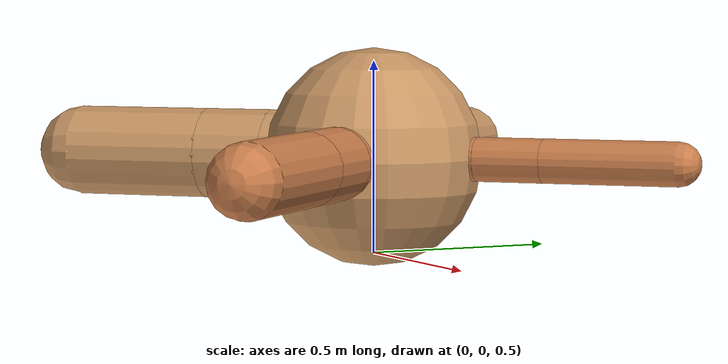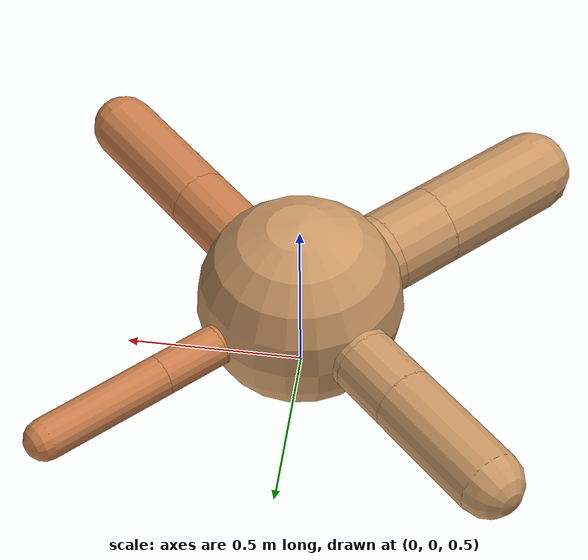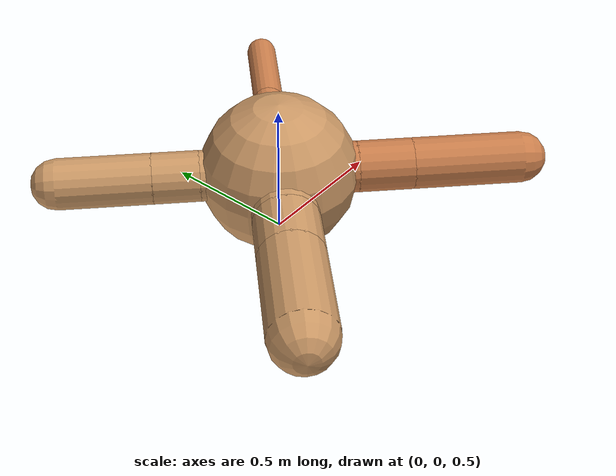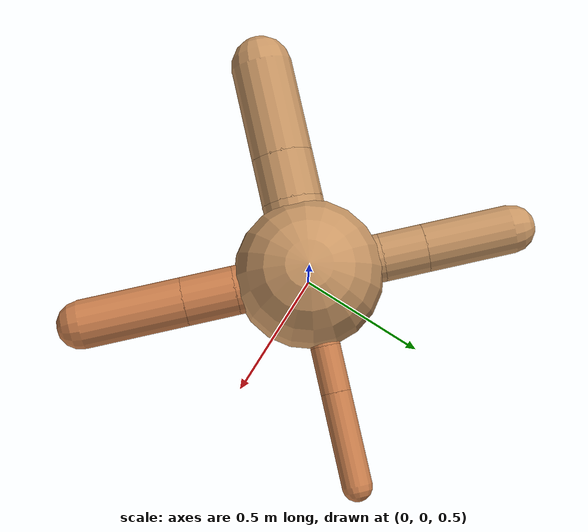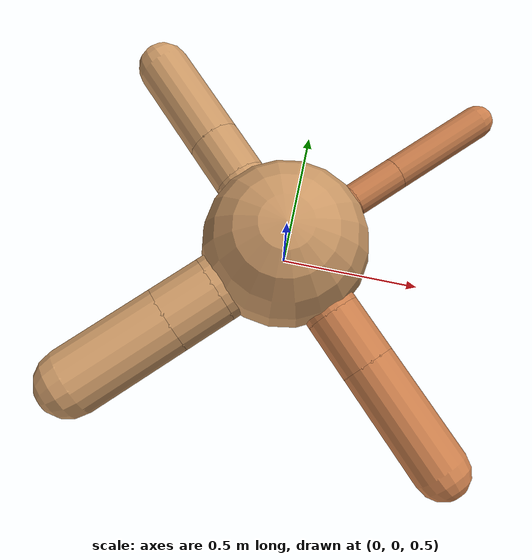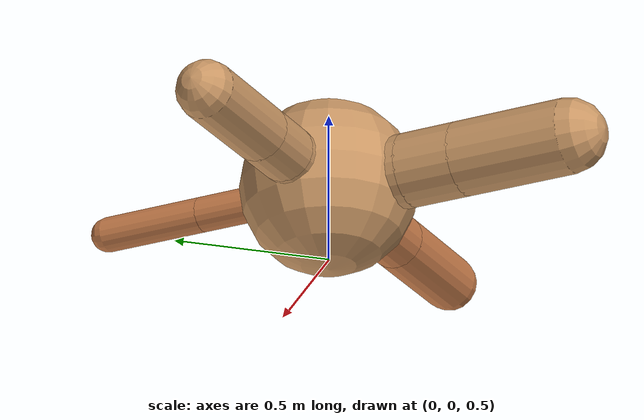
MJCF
<?xml version="1.0" ?>
<mujoco model="ant">

	<compiler angle="degree" coordinate="local" inertiafromgeom="true"/>

	<option integrator="RK4" timestep="0.01"/>

	<custom>

		<numeric data="0.0 0.0 0.55 1.0 0.0 0.0 0.0 0.0 1.0 0.0 -1.0 0.0 -1.0 0.0 1.0" name="init_qpos"/>

	</custom>

	<default>

		<joint armature="1" damping="1" limited="true"/>

		<geom conaffinity="0" condim="3" density="5.0" friction="1.5 0.1 0.1" margin="0.01" rgba="0.8 0.6 0.4 1"/>

	</default>

	<worldbody>

		<body name="torso" pos="0 0 0.75">

			<geom name="torso_geom" pos="0 0 0" size="0.2853191743014384" type="sphere"/>

			<!--joint armature="0" damping="0" limited="false" margin="0.01" name="root" pos="0 0 0" type="free"/-->

			<body name="front_left_leg" pos="0 0 0">

				<geom fromto="0 0 0 0.2 0.2 0" name="aux_1_geom" size="0.05756784787790673" type="capsule" rgba=".8 .5 .3 1"/>

				<body name="aux_1" pos="0.2 0.2 0">

					<joint axis="0 0 1" name="hip_1" pos="0.0 0.0 0.0" range="-40 40" type="hinge"/>

					<geom fromto="0 0 0 0.1250012951910701 0.1250012951910701 0" name="left_leg_geom" size="0.05756784787790673" type="capsule" rgba=".8 .5 .3 1"/>

					<body pos="0.1250012951910701 0.1250012951910701 0" name="front_left_foot">

						<joint axis="-1 1 0" name="ankle_1" pos="0.0 0.0 0.0" range="30 100" type="hinge"/>

						<geom fromto="0 0 0 0.2500025903821402 0.2500025903821402 0" name="left_ankle_geom" size="0.05756784787790673" type="capsule" rgba=".8 .5 .3 1"/>

					</body>

				</body>

			</body>

			<body name="front_right_leg" pos="0 0 0">

				<geom fromto="0 0 0 -0.2 0.2 0" name="aux_2_geom" size="0.09279894863748148" type="capsule"/>

				<body name="aux_2" pos="-0.2 0.2 0">

					<joint axis="0 0 1" name="hip_2" pos="0.0 0.0 0.0" range="-40 40" type="hinge"/>

					<geom fromto="0 0 0 -0.11908166539469428 0.11908166539469428 0" name="right_leg_geom" size="0.09279894863748148" type="capsule"/>

					<body pos="-0.11908166539469428 0.11908166539469428 0" name="front_right_foot">

						<joint axis="1 1 0" name="ankle_2" pos="0.0 0.0 0.0" range="-100 -30" type="hinge"/>

						<geom fromto="0 0 0 -0.23816333078938856 0.23816333078938856 0" name="right_ankle_geom" size="0.09279894863748148" type="capsule"/>

					</body>

				</body>

			</body>

			<body name="left_back_leg" pos="0 0 0">

				<geom fromto="0 0 0 -0.2 -0.2 0" name="aux_3_geom" size="0.1188297916977645" type="capsule"/>

				<body name="aux_3" pos="-0.2 -0.2 0">

					<joint axis="0 0 1" name="hip_3" pos="0.0 0.0 0.0" range="-40 40" type="hinge"/>

					<geom fromto="0 0 0 -0.12956888614892442 -0.12956888614892442 0" name="back_leg_geom" size="0.1188297916977645" type="capsule"/>

					<body pos="-0.12956888614892442 -0.12956888614892442 0" name="left_back_foot">

						<joint axis="-1 1 0" name="ankle_3" pos="0.0 0.0 0.0" range="-100 -30" type="hinge"/>

						<geom fromto="0 0 0 -0.25913777229784885 -0.25913777229784885 0" name="third_ankle_geom" size="0.1188297916977645" type="capsule"/>

					</body>

				</body>

			</body>

			<body name="right_back_leg" pos="0 0 0">

				<geom fromto="0 0 0 0.2 -0.2 0" name="aux_4_geom" size="0.09386823231849428" type="capsule" rgba=".8 .5 .3 1"/>

				<body name="aux_4" pos="0.2 -0.2 0">

					<joint axis="0 0 1" name="hip_4" pos="0.0 0.0 0.0" range="-40 40" type="hinge"/>

					<geom fromto="0 0 0 0.14055670391041608 -0.14055670391041608 0" name="rightback_leg_geom" size="0.09386823231849428" type="capsule" rgba=".8 .5 .3 1"/>

					<body pos="0.14055670391041608 -0.14055670391041608 0" name="right_back_foot">

						<joint axis="1 1 0" name="ankle_4" pos="0.0 0.0 0.0" range="30 100" type="hinge"/>

						<geom fromto="0 0 0 0.28111340782083216 -0.28111340782083216 0" name="fourth_ankle_geom" size="0.09386823231849428" type="capsule" rgba=".8 .5 .3 1"/>

					</body>

				</body>

			</body>

		</body>

	</worldbody>

	<actuator>

		<motor ctrllimited="true" ctrlrange="-1.0 1.0" joint="hip_4" gear="150"/>

		<motor ctrllimited="true" ctrlrange="-1.0 1.0" joint="ankle_4" gear="150"/>

		<motor ctrllimited="true" ctrlrange="-1.0 1.0" joint="hip_1" gear="150"/>

		<motor ctrllimited="true" ctrlrange="-1.0 1.0" joint="ankle_1" gear="150"/>

		<motor ctrllimited="true" ctrlrange="-1.0 1.0" joint="hip_2" gear="150"/>

		<motor ctrllimited="true" ctrlrange="-1.0 1.0" joint="ankle_2" gear="150"/>

		<motor ctrllimited="true" ctrlrange="-1.0 1.0" joint="hip_3" gear="150"/>

		<motor ctrllimited="true" ctrlrange="-1.0 1.0" joint="ankle_3" gear="150"/>

	</actuator>

</mujoco>
